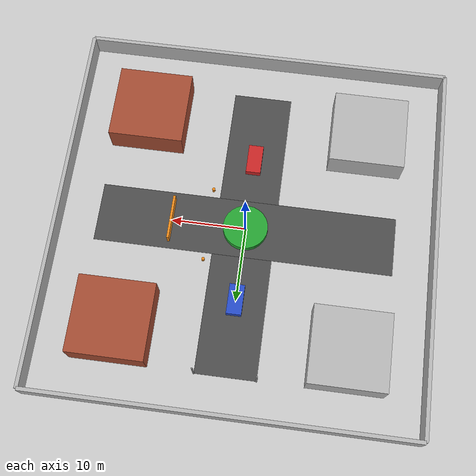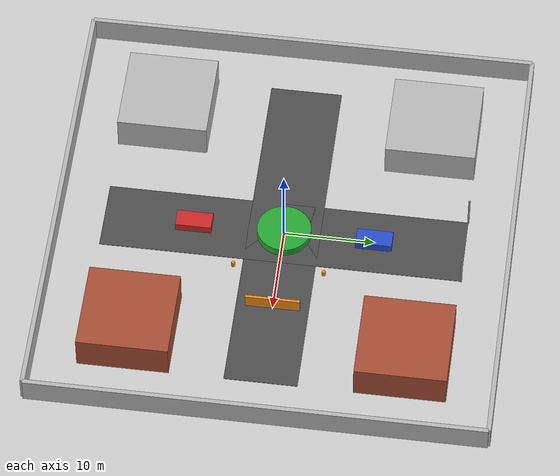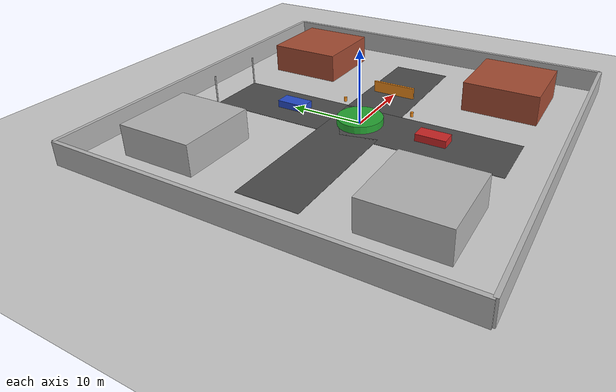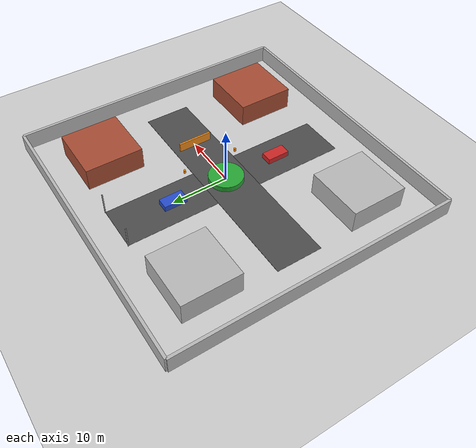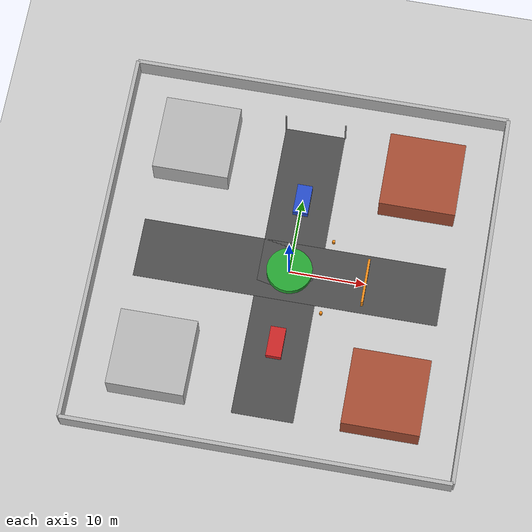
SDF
<?xml version="1.0"?>
<sdf version="1.6">
  <world name="urban_closed_course_with_walls">

    <!-- 环境光 -->
    <include>
      <uri>model://sun</uri>
    </include>

    <!-- 大型地面 -->
    <model name="ground_plane">
      <static>true</static>
      <link name="link">
        <collision name="collision">
          <geometry>
            <plane>
              <normal>0 0 1</normal>
              <size>100 100</size>
            </plane>
          </geometry>
          <surface>
            <friction>
              <ode>
                <mu>100</mu>
                <mu2>50</mu2>
              </ode>
            </friction>
          </surface>
        </collision>
        <visual name="visual">
          <geometry>
            <plane>
              <normal>0 0 1</normal>
              <size>100 100</size>
            </plane>
          </geometry>
          <material>
            <script>
              <uri>file://media/materials/scripts/gazebo.material</uri>
              <name>Gazebo/Grey</name>
            </script>
          </material>
        </visual>
      </link>
    </model>

    <!-- 边界围墙 - 形成闭合环境 -->
    <!-- 北墙 -->
    <model name="north_wall">
      <static>true</static>
      <pose>0 25 1.5 0 0 0</pose>
      <link name="link">
        <collision name="collision">
          <geometry>
            <box>
              <size>50 0.5 3</size>
            </box>
          </geometry>
        </collision>
        <visual name="visual">
          <geometry>
            <box>
              <size>50 0.5 3</size>
            </box>
          </geometry>
          <material>
            <script>
              <uri>file://media/materials/scripts/gazebo.material</uri>
              <name>Gazebo/Concrete</name>
            </script>
          </material>
        </visual>
      </link>
    </model>

    <!-- 南墙 -->
    <model name="south_wall">
      <static>true</static>
      <pose>0 -25 1.5 0 0 0</pose>
      <link name="link">
        <collision name="collision">
          <geometry>
            <box>
              <size>50 0.5 3</size>
            </box>
          </geometry>
        </collision>
        <visual name="visual">
          <geometry>
            <box>
              <size>50 0.5 3</size>
            </box>
          </geometry>
          <material>
            <script>
              <uri>file://media/materials/scripts/gazebo.material</uri>
              <name>Gazebo/Concrete</name>
            </script>
          </material>
        </visual>
      </link>
    </model>

    <!-- 东墙 -->
    <model name="east_wall">
      <static>true</static>
      <pose>25 0 1.5 0 0 0</pose>
      <link name="link">
        <collision name="collision">
          <geometry>
            <box>
              <size>0.5 50 3</size>
            </box>
          </geometry>
        </collision>
        <visual name="visual">
          <geometry>
            <box>
              <size>0.5 50 3</size>
            </box>
          </geometry>
          <material>
            <script>
              <uri>file://media/materials/scripts/gazebo.material</uri>
              <name>Gazebo/Concrete</name>
            </script>
          </material>
        </visual>
      </link>
    </model>

    <!-- 西墙 -->
    <model name="west_wall">
      <static>true</static>
      <pose>-25 0 1.5 0 0 0</pose>
      <link name="link">
        <collision name="collision">
          <geometry>
            <box>
              <size>0.5 50 3</size>
            </box>
          </geometry>
        </collision>
        <visual name="visual">
          <geometry>
            <box>
              <size>0.5 50 3</size>
            </box>
          </geometry>
          <material>
            <script>
              <uri>file://media/materials/scripts/gazebo.material</uri>
              <name>Gazebo/Concrete</name>
            </script>
          </material>
        </visual>
      </link>
    </model>

    <!-- 城市道路系统 - 十字交叉路 -->
    <!-- 南北主干道 -->
    <model name="north_south_road">
      <static>true</static>
      <pose>0 0 0.02 0 0 0</pose>
      <link name="link">
        <collision name="collision">
          <geometry>
            <box>
              <size>8 40 0.04</size>
            </box>
          </geometry>
        </collision>
        <visual name="visual">
          <geometry>
            <box>
              <size>8 40 0.04</size>
            </box>
          </geometry>
          <material>
            <script>
              <uri>file://media/materials/scripts/gazebo.material</uri>
              <name>Gazebo/Asphalt</name>
            </script>
          </material>
        </visual>
      </link>
    </model>

    <!-- 东西主干道 -->
    <model name="east_west_road">
      <static>true</static>
      <pose>0 0 0.02 0 0 1.57</pose>
      <link name="link">
        <collision name="collision">
          <geometry>
            <box>
              <size>8 40 0.04</size>
            </box>
          </geometry>
        </collision>
        <visual name="visual">
          <geometry>
            <box>
              <size>8 40 0.04</size>
            </box>
          </geometry>
          <material>
            <script>
              <uri>file://media/materials/scripts/gazebo.material</uri>
              <name>Gazebo/Asphalt</name>
            </script>
          </material>
        </visual>
      </link>
    </model>

    <!-- 道路中心标记 -->
    <model name="center_marking">
      <static>true</static>
      <pose>0 0 0.03 0 0 0</pose>
      <link name="link">
        <visual name="visual">
          <geometry>
            <box>
              <size>0.2 40 0.01</size>
            </box>
          </geometry>
          <material>
            <ambient>1 1 0 1</ambient>
            <diffuse>1 1 0 1</diffuse>
          </material>
        </visual>
      </link>
    </model>

    <!-- 建筑物区域 -->
    <!-- 东北区域建筑 -->
    <model name="building_northeast">
      <static>true</static>
      <pose>15 15 2 0 0 0</pose>
      <link name="link">
        <collision name="collision">
          <geometry>
            <box>
              <size>10 10 4</size>
            </box>
          </geometry>
        </collision>
        <visual name="visual">
          <geometry>
            <box>
              <size>10 10 4</size>
            </box>
          </geometry>
          <material>
            <script>
              <uri>file://media/materials/scripts/gazebo.material</uri>
              <name>Gazebo/Bricks</name>
            </script>
          </material>
        </visual>
      </link>
    </model>

    <!-- 西北区域建筑 -->
    <model name="building_northwest">
      <static>true</static>
      <pose>-15 15 2 0 0 0</pose>
      <link name="link">
        <collision name="collision">
          <geometry>
            <box>
              <size>10 10 4</size>
            </box>
          </geometry>
        </collision>
        <visual name="visual">
          <geometry>
            <box>
              <size>10 10 4</size>
            </box>
          </geometry>
          <material>
            <script>
              <uri>file://media/materials/scripts/gazebo.material</uri>
              <name>Gazebo/Concrete</name>
            </script>
          </material>
        </visual>
      </link>
    </model>

    <!-- 东南区域建筑 -->
    <model name="building_southeast">
      <static>true</static>
      <pose>15 -15 2 0 0 0</pose>
      <link name="link">
        <collision name="collision">
          <geometry>
            <box>
              <size>10 10 4</size>
            </box>
          </geometry>
        </collision>
        <visual name="visual">
          <geometry>
            <box>
              <size>10 10 4</size>
            </box>
          </geometry>
          <material>
            <script>
              <uri>file://media/materials/scripts/gazebo.material</uri>
              <name>Gazebo/Bricks</name>
            </script>
          </material>
        </visual>
      </link>
    </model>

    <!-- 西南区域建筑 -->
    <model name="building_southwest">
      <static>true</static>
      <pose>-15 -15 2 0 0 0</pose>
      <link name="link">
        <collision name="collision">
          <geometry>
            <box>
              <size>10 10 4</size>
            </box>
          </geometry>
        </collision>
        <visual name="visual">
          <geometry>
            <box>
              <size>10 10 4</size>
            </box>
          </geometry>
          <material>
            <script>
              <uri>file://media/materials/scripts/gazebo.material</uri>
              <name>Gazebo/Concrete</name>
            </script>
          </material>
        </visual>
      </link>
    </model>

    <!-- 障碍物1: 中央环岛 -->
    <model name="roundabout">
      <static>true</static>
      <pose>0 0 0.5 0 0 0</pose>
      <link name="link">
        <collision name="collision">
          <geometry>
            <cylinder>
              <radius>3</radius>
              <length>1</length>
            </cylinder>
          </geometry>
        </collision>
        <visual name="visual">
          <geometry>
            <cylinder>
              <radius>3</radius>
              <length>1</length>
            </cylinder>
          </geometry>
          <material>
            <script>
              <uri>file://media/materials/scripts/gazebo.material</uri>
              <name>Gazebo/Green</name>
            </script>
          </material>
        </visual>
      </link>
    </model>

    <!-- 障碍物2: 施工围栏 -->
    <model name="construction_fence">
      <static>true</static>
      <pose>10 0 0.8 0 0 1.57</pose>
      <link name="link">
        <collision name="collision">
          <geometry>
            <box>
              <size>6 0.3 1.6</size>
            </box>
          </geometry>
        </collision>
        <visual name="visual">
          <geometry>
            <box>
              <size>6 0.3 1.6</size>
            </box>
          </geometry>
          <material>
            <script>
              <uri>file://media/materials/scripts/gazebo.material</uri>
              <name>Gazebo/Orange</name>
            </script>
          </material>
        </visual>
      </link>
    </model>

    <!-- 障碍物3: 停车场车辆 -->
    <model name="parked_car_1">
      <static>true</static>
      <pose>0 10 0.5 0 0 1.57</pose>
      <link name="link">
        <collision name="collision">
          <geometry>
            <box>
              <size>4 2 1</size>
            </box>
          </geometry>
        </collision>
        <visual name="visual">
          <geometry>
            <box>
              <size>4 2 1</size>
            </box>
          </geometry>
          <material>
            <script>
              <uri>file://media/materials/scripts/gazebo.material</uri>
              <name>Gazebo/Blue</name>
            </script>
          </material>
        </visual>
      </link>
    </model>

    <model name="parked_car_2">
      <static>true</static>
      <pose>0 -10 0.5 0 0 1.57</pose>
      <link name="link">
        <collision name="collision">
          <geometry>
            <box>
              <size>4 2 1</size>
            </box>
          </geometry>
        </collision>
        <visual name="visual">
          <geometry>
            <box>
              <size>4 2 1</size>
            </box>
          </geometry>
          <material>
            <script>
              <uri>file://media/materials/scripts/gazebo.material</uri>
              <name>Gazebo/Red</name>
            </script>
          </material>
        </visual>
      </link>
    </model>

    <!-- 障碍物4: 交通锥 -->
    <model name="traffic_cone_1">
      <static>true</static>
      <pose>5 5 0.3 0 0 0</pose>
      <link name="link">
        <collision name="collision">
          <geometry>
            <cylinder>
              <radius>0.2</radius>
              <length>0.6</length>
            </cylinder>
          </geometry>
        </collision>
        <visual name="visual">
          <geometry>
            <cylinder>
              <radius>0.2</radius>
              <length>0.6</length>
            </cylinder>
          </geometry>
          <material>
            <script>
              <uri>file://media/materials/scripts/gazebo.material</uri>
              <name>Gazebo/Orange</name>
            </script>
          </material>
        </visual>
      </link>
    </model>

    <model name="traffic_cone_2">
      <static>true</static>
      <pose>5 -5 0.3 0 0 0</pose>
      <link name="link">
        <collision name="collision">
          <geometry>
            <cylinder>
              <radius>0.2</radius>
              <length>0.6</length>
            </cylinder>
          </geometry>
        </collision>
        <visual name="visual">
          <geometry>
            <cylinder>
              <radius>0.2</radius>
              <length>0.6</length>
            </cylinder>
          </geometry>
          <material>
            <script>
              <uri>file://media/materials/scripts/gazebo.material</uri>
              <name>Gazebo/Orange</name>
            </script>
          </material>
        </visual>
      </link>
    </model>

    <!-- 路灯 -->
    <model name="street_light_1">
      <static>true</static>
      <pose>4 20 2 0 0 0</pose>
      <link name="link">
        <collision name="collision">
          <geometry>
            <cylinder>
              <radius>0.1</radius>
              <length>4</length>
            </cylinder>
          </geometry>
        </collision>
        <visual name="visual">
          <geometry>
            <cylinder>
              <radius>0.1</radius>
              <length>4</length>
            </cylinder>
          </geometry>
          <material>
            <script>
              <uri>file://media/materials/scripts/gazebo.material</uri>
              <name>Gazebo/Grey</name>
            </script>
          </material>
        </visual>
      </link>
    </model>

    <model name="street_light_2">
      <static>true</static>
      <pose>-4 20 2 0 0 0</pose>
      <link name="link">
        <collision name="collision">
          <geometry>
            <cylinder>
              <radius>0.1</radius>
              <length>4</length>
            </cylinder>
          </geometry>
        </collision>
        <visual name="visual">
          <geometry>
            <cylinder>
              <radius>0.1</radius>
              <length>4</length>
            </cylinder>
          </geometry>
          <material>
            <script>
              <uri>file://media/materials/scripts/gazebo.material</uri>
              <name>Gazebo/Grey</name>
            </script>
          </material>
        </visual>
      </link>
    </model>

    <!-- 起始点标记 -->
    <model name="start_point">
      <static>true</static>
      <pose>0 -18 0.03 0 0 0</pose>
      <link name="link">
        <visual name="visual">
          <geometry>
            <box>
              <size>2 0.3 0.01</size>
            </box>
          </geometry>
          <material>
            <ambient>0 1 0 1</ambient>
            <diffuse>0 1 0 1</diffuse>
          </material>
        </visual>
      </link>
    </model>

  </world>
</sdf>
